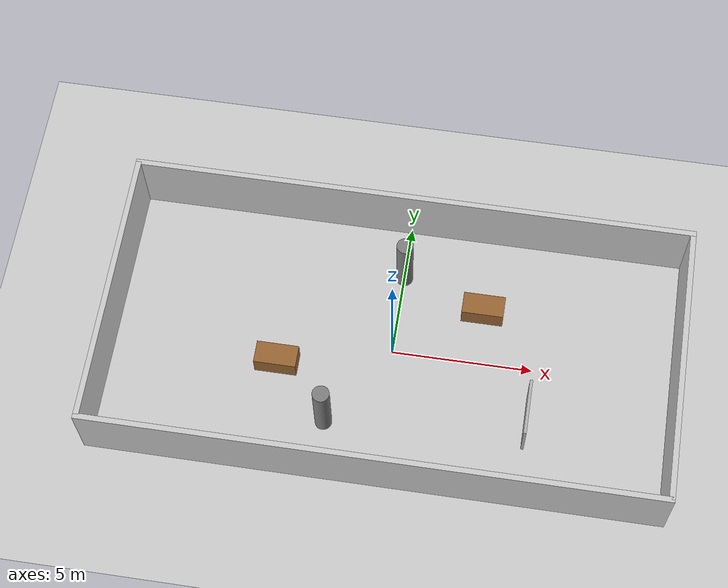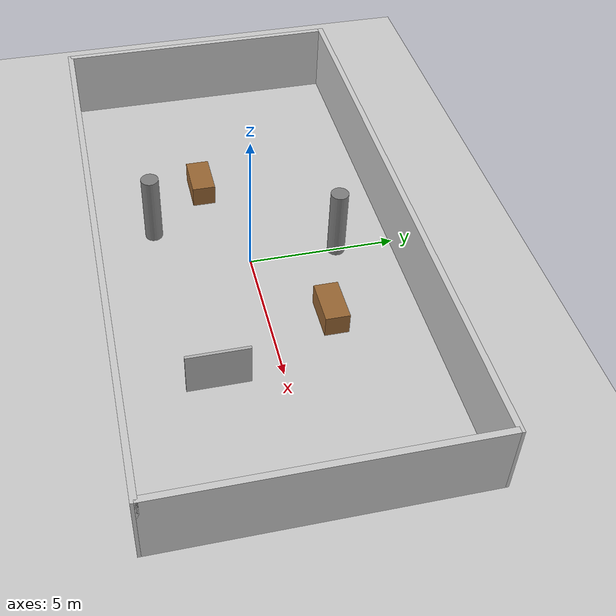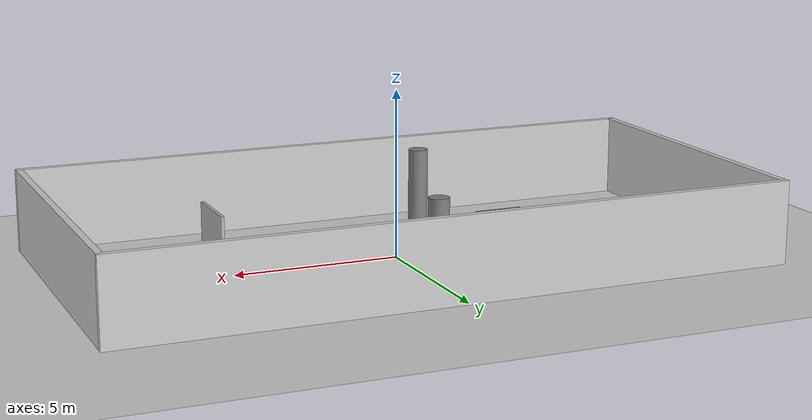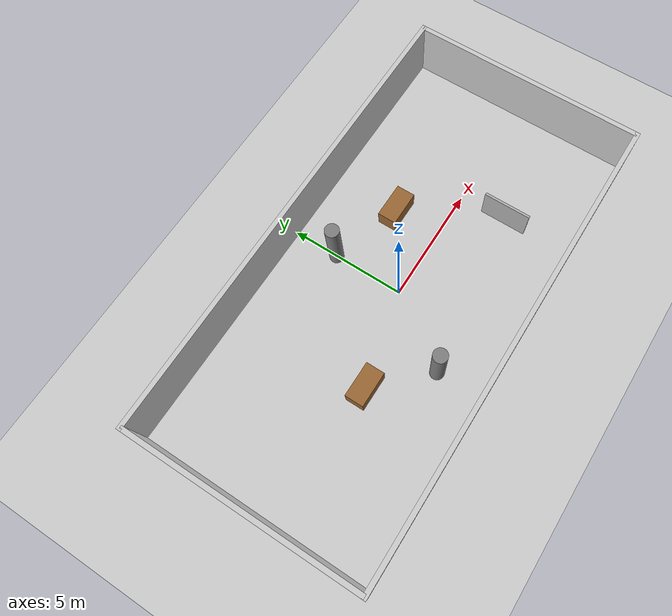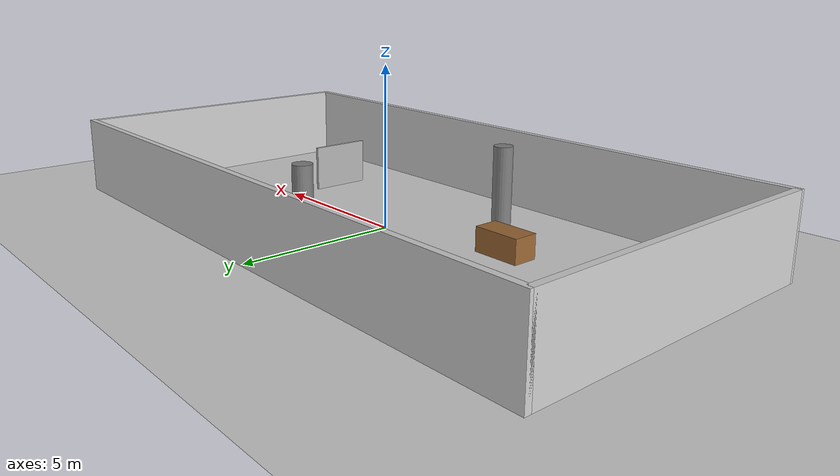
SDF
<?xml version="1.0" ?>
<sdf version="1.7">
  <world name="cleaning_environment">

    <!-- Освещение (встроенное) -->
    <light name="sun" type="directional">
      <pose>0 0 10 0 0 0</pose>
      <diffuse>0.8 0.8 0.8 1</diffuse>
      <specular>0.2 0.2 0.2 1</specular>
      <direction>-0.5 0.1 -0.9</direction>
      <cast_shadows>true</cast_shadows>
    </light>

    <!-- Земля/пол (встроенная) -->
    <model name="ground_plane">
      <static>true</static>
      <link name="link">
        <collision name="collision">
          <geometry>
            <plane>
              <normal>0 0 1</normal>
              <size>100 100</size>
            </plane>
          </geometry>
        </collision>
        <visual name="visual">
          <geometry>
            <plane>
              <normal>0 0 1</normal>
              <size>100 100</size>
            </plane>
          </geometry>
          <material>
            <ambient>0.8 0.8 0.8 1</ambient>
            <diffuse>0.8 0.8 0.8 1</diffuse>
          </material>
        </visual>
      </link>
    </model>

    <!-- СТЕНЫ (20м x 10м) -->
    <!-- Передняя стена (x = 10м) -->
    <model name="front_wall">
      <static>true</static>
      <link name="link">
        <collision name="collision">
          <geometry>
            <box><size>0.2 10.0 2.5</size></box>
          </geometry>
        </collision>
        <visual name="visual">
          <geometry>
            <box><size>0.2 10.0 2.5</size></box>
          </geometry>
          <material>
            <ambient>0.8 0.8 0.8 1</ambient>
            <diffuse>0.8 0.8 0.8 1</diffuse>
          </material>
        </visual>
      </link>
      <pose>10 0 1.25 0 0 0</pose>
    </model>

    <!-- Задняя стена (x = -10м) -->
    <model name="back_wall">
      <static>true</static>
      <link name="link">
        <collision name="collision">
          <geometry>
            <box><size>0.2 10.0 2.5</size></box>
          </geometry>
        </collision>
        <visual name="visual">
          <geometry>
            <box><size>0.2 10.0 2.5</size></box>
          </geometry>
          <material>
            <ambient>0.8 0.8 0.8 1</ambient>
            <diffuse>0.8 0.8 0.8 1</diffuse>
          </material>
        </visual>
      </link>
      <pose>-10 0 1.25 0 0 0</pose>
    </model>

    <!-- Левая стена (y = 5м) -->
    <model name="left_wall">
      <static>true</static>
      <link name="link">
        <collision name="collision">
          <geometry>
            <box><size>20.2 0.2 2.5</size></box>
          </geometry>
        </collision>
        <visual name="visual">
          <geometry>
            <box><size>20.2 0.2 2.5</size></box>
          </geometry>
          <material>
            <ambient>0.8 0.8 0.8 1</ambient>
            <diffuse>0.8 0.8 0.8 1</diffuse>
          </material>
        </visual>
      </link>
      <pose>0 5 1.25 0 0 0</pose>
    </model>

    <!-- Правая стена (y = -5м) -->
    <model name="right_wall">
      <static>true</static>
      <link name="link">
        <collision name="collision">
          <geometry>
            <box><size>20.2 0.2 2.5</size></box>
          </geometry>
        </collision>
        <visual name="visual">
          <geometry>
            <box><size>20.2 0.2 2.5</size></box>
          </geometry>
          <material>
            <ambient>0.8 0.8 0.8 1</ambient>
            <diffuse>0.8 0.8 0.8 1</diffuse>
          </material>
        </visual>
      </link>
      <pose>0 -5 1.25 0 0 0</pose>
    </model>

    <!-- ПРЕПЯТСТВИЯ -->
    <!-- Стол 1 -->
    <model name="table_1">
      <static>true</static>
      <link name="link">
        <collision name="collision">
          <geometry>
            <box><size>1.5 0.8 0.75</size></box>
          </geometry>
        </collision>
        <visual name="visual">
          <geometry>
            <box><size>1.5 0.8 0.75</size></box>
          </geometry>
          <material>
            <ambient>0.6 0.4 0.2 1</ambient>
            <diffuse>0.6 0.4 0.2 1</diffuse>
          </material>
        </visual>
      </link>
      <pose>3 2 0.375 0 0 0</pose>
    </model>

    <!-- Стол 2 -->
    <model name="table_2">
      <static>true</static>
      <link name="link">
        <collision name="collision">
          <geometry>
            <box><size>1.5 0.8 0.75</size></box>
          </geometry>
        </collision>
        <visual name="visual">
          <geometry>
            <box><size>1.5 0.8 0.75</size></box>
          </geometry>
          <material>
            <ambient>0.6 0.4 0.2 1</ambient>
            <diffuse>0.6 0.4 0.2 1</diffuse>
          </material>
        </visual>
      </link>
      <pose>-4 -1 0.375 0 0 0</pose>
    </model>

    <!-- Колонна 1 -->
    <model name="column_1">
      <static>true</static>
      <link name="link">
        <collision name="collision">
          <geometry>
            <cylinder><radius>0.3</radius><length>2.5</length></cylinder>
          </geometry>
        </collision>
        <visual name="visual">
          <geometry>
            <cylinder><radius>0.3</radius><length>2.5</length></cylinder>
          </geometry>
          <material>
            <ambient>0.5 0.5 0.5 1</ambient>
            <diffuse>0.5 0.5 0.5 1</diffuse>
          </material>
        </visual>
      </link>
      <pose>0 3 1.25 0 0 0</pose>
    </model>

    <!-- Колонна 2 -->
    <model name="column_2">
      <static>true</static>
      <link name="link">
        <collision name="collision">
          <geometry>
            <cylinder><radius>0.3</radius><length>2.5</length></cylinder>
          </geometry>
        </collision>
        <visual name="visual">
          <geometry>
            <cylinder><radius>0.3</radius><length>2.5</length></cylinder>
          </geometry>
          <material>
            <ambient>0.5 0.5 0.5 1</ambient>
            <diffuse>0.5 0.5 0.5 1</diffuse>
          </material>
        </visual>
      </link>
      <pose>-2 -3 1.25 0 0 0</pose>
    </model>

    <!-- Перегородка -->
    <model name="partition">
      <static>true</static>
      <link name="link">
        <collision name="collision">
          <geometry>
            <box><size>2.0 0.1 1.5</size></box>
          </geometry>
        </collision>
        <visual name="visual">
          <geometry>
            <box><size>2.0 0.1 1.5</size></box>
          </geometry>
          <material>
            <ambient>0.7 0.7 0.7 1</ambient>
            <diffuse>0.7 0.7 0.7 1</diffuse>
          </material>
        </visual>
      </link>
      <pose>5 -2 0.75 0 0 1.57</pose>
    </model>

  </world>
</sdf>
